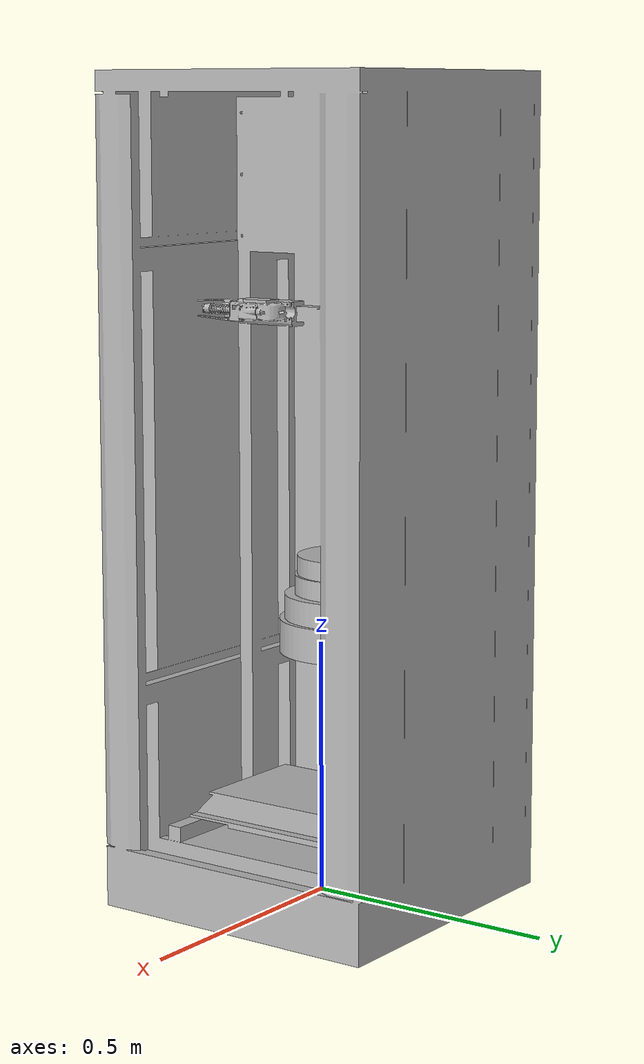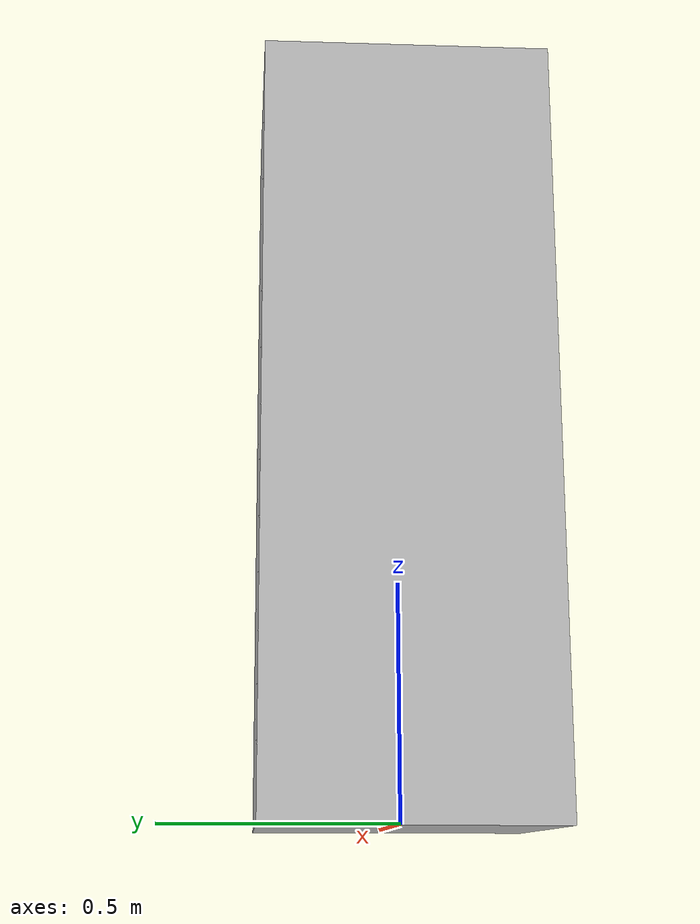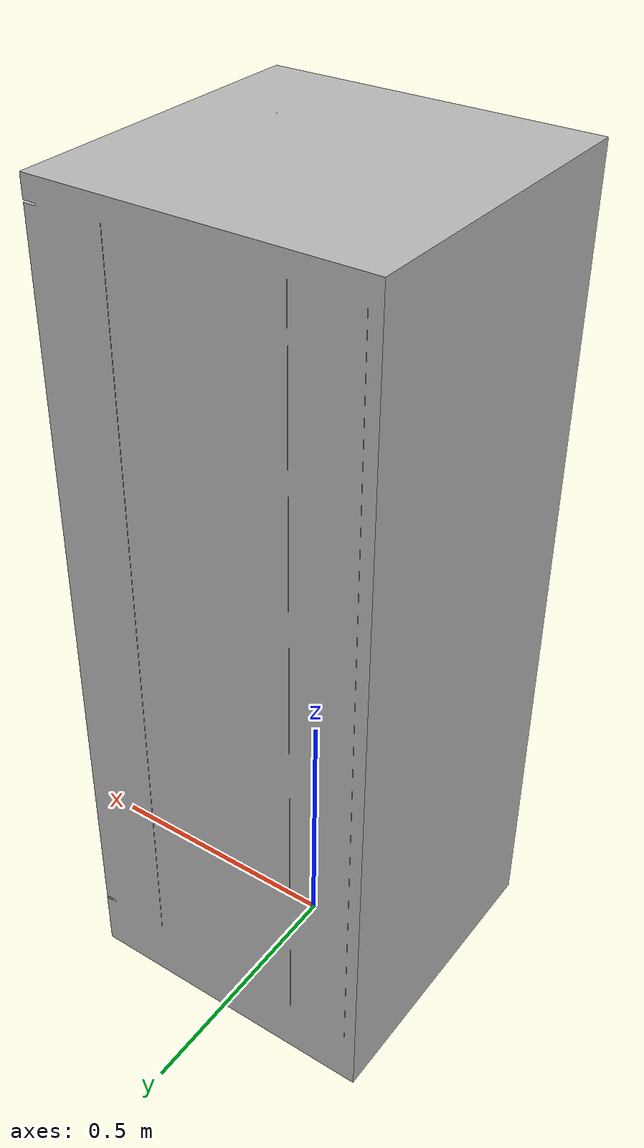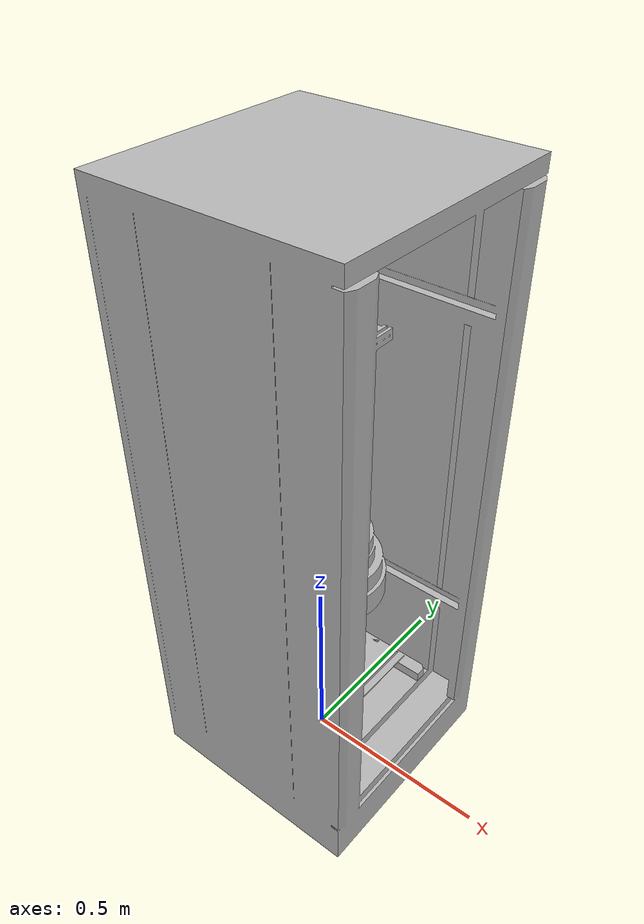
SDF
<?xml version="1.0" ?>
<sdf version="1.6">
	<model name="test_rig">
		<link name="weigths">
			<self_collide>false</self_collide>
			<pose frame="">-0.016000000058417858 0.05999999994313841 0.575809414305355 0.0 -0.0 0.0</pose>
			<inertial>
				<pose frame="">0.0 0.0 0.0 0 0 0</pose>
				<mass>7.340606071919854</mass>
				<inertia>
					<ixx>2.5184768662755554</ixx>
					<ixy>0.007046981845070233</ixy>
					<ixz>0.06762864153806918</ixz>
					<iyy>2.493929904426759</iyy>
					<iyz>-0.2536074048226213</iyz>
					<izz>0.0888810463738978</izz>
				</inertia>
			</inertial>
			<collision name="weigths_collision">
				<geometry>
					<mesh>
						<uri>model://test_rig/meshes/CAD/weigths.stl</uri>
						<scale>0.001 0.001 0.001</scale>
					</mesh>
				</geometry>
			</collision>
			<visual name="weigths_visual">
				<geometry>
					<mesh>
						<uri>model://test_rig/meshes/CAD/weigths.stl</uri>
						<scale>0.001 0.001 0.001</scale>
					</mesh>
				</geometry>
			</visual>
		</link>
		<link name="base">
			<self_collide>false</self_collide>
			<kinematic>true</kinematic>
			<pose frame="">-0.04520840420402366 -9.682586175108711e-05 0.5516047453650074 0.0 -0.0 0.0</pose>
			<inertial>
				<pose frame="">0.0 0.0 0.0 0 0 0</pose>
				<mass>64.194741653243</mass>
				<inertia>
					<ixx>40.398873413873275</ixx>
					<ixy>-0.00014213295138116084</ixy>
					<ixz>2.428457716665941</ixz>
					<iyy>40.38030876850846</iyy>
					<iyz>0.017369152923575874</iyz>
					<izz>5.982695010751682</izz>
				</inertia>
			</inertial>
			<collision name="base_collision">
				<geometry>
					<mesh>
						<uri>model://test_rig/meshes/CAD/base.stl</uri>
						<scale>0.001 0.001 0.001</scale>
					</mesh>
				</geometry>
			</collision>
			<visual name="base_visual">
				<geometry>
					<mesh>
						<uri>model://test_rig/meshes/CAD/base.stl</uri>
						<scale>0.001 0.001 0.001</scale>
					</mesh>
				</geometry>
			</visual>
		</link>
		<joint name="joint_weigths" type="prismatic">
			<parent>base</parent>
			<child>weigths</child>
			<pose frame="">-0.029999999941581663 -0.05999999994313841 0.544190585694645 0 0 0</pose>
			<axis>
				<xyz>0.0 0.0 -1.0</xyz>
				<limit>
					<lower>0.0</lower>
					<upper>0.2</upper>
				</limit>
				<use_parent_model_frame>0</use_parent_model_frame>
			</axis>
		</joint>
		<plugin filename="libcardsflow_gazebo_plugin.so" name="cardsflow_gazebo_plugin"/>
	</model>
</sdf>
